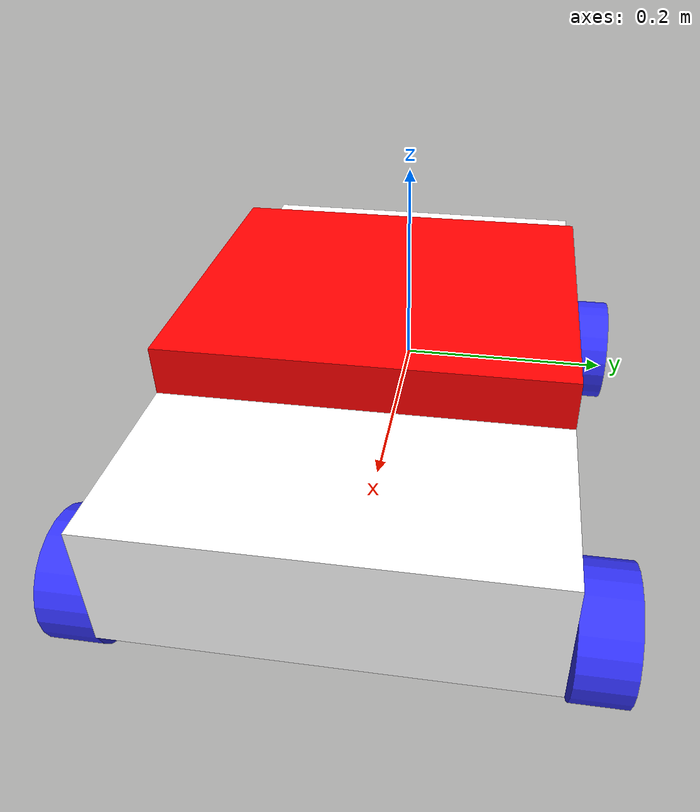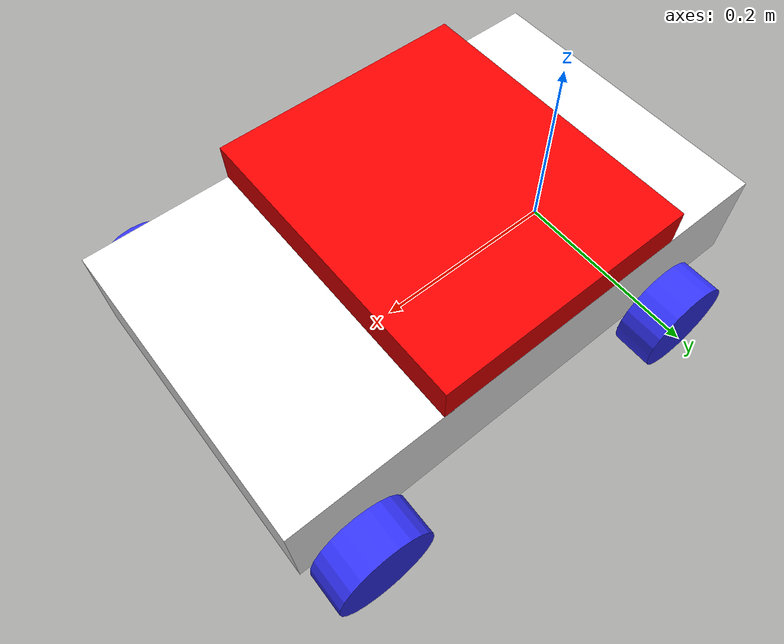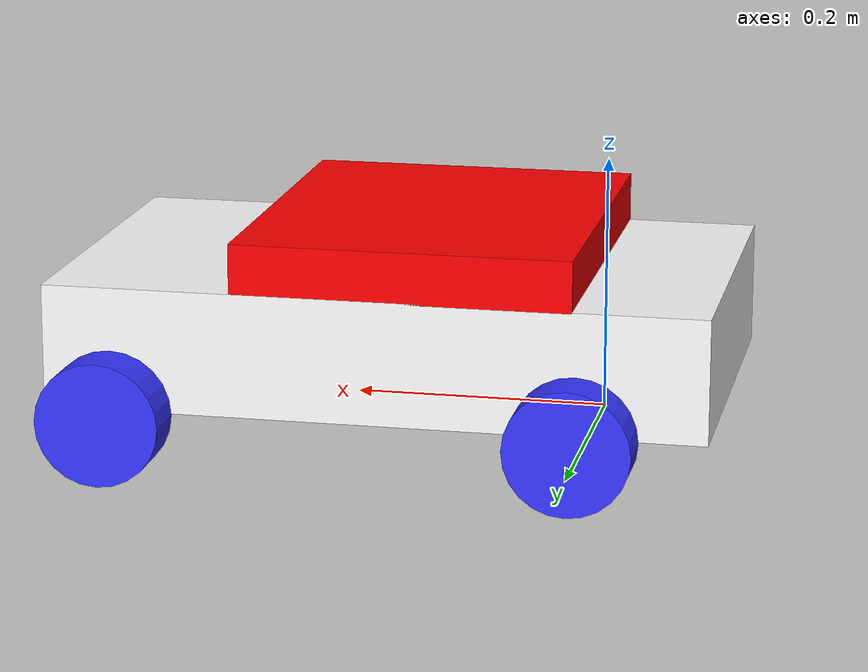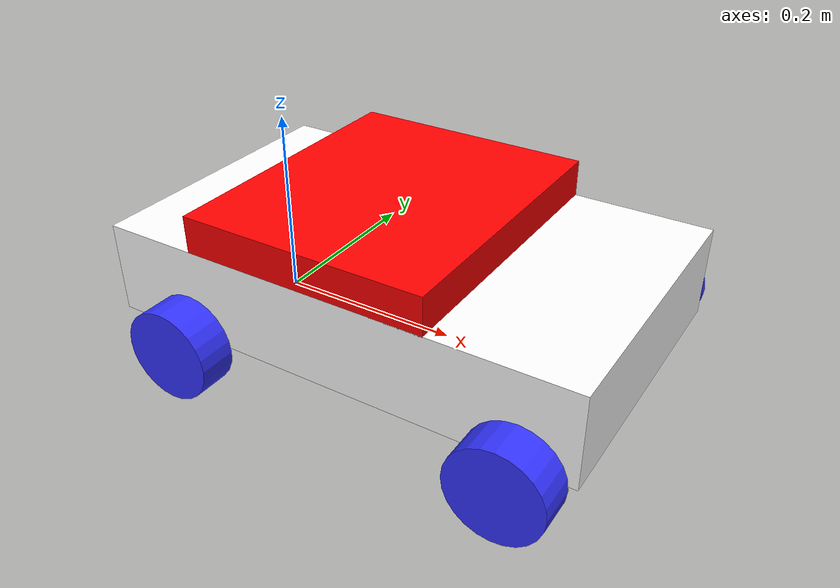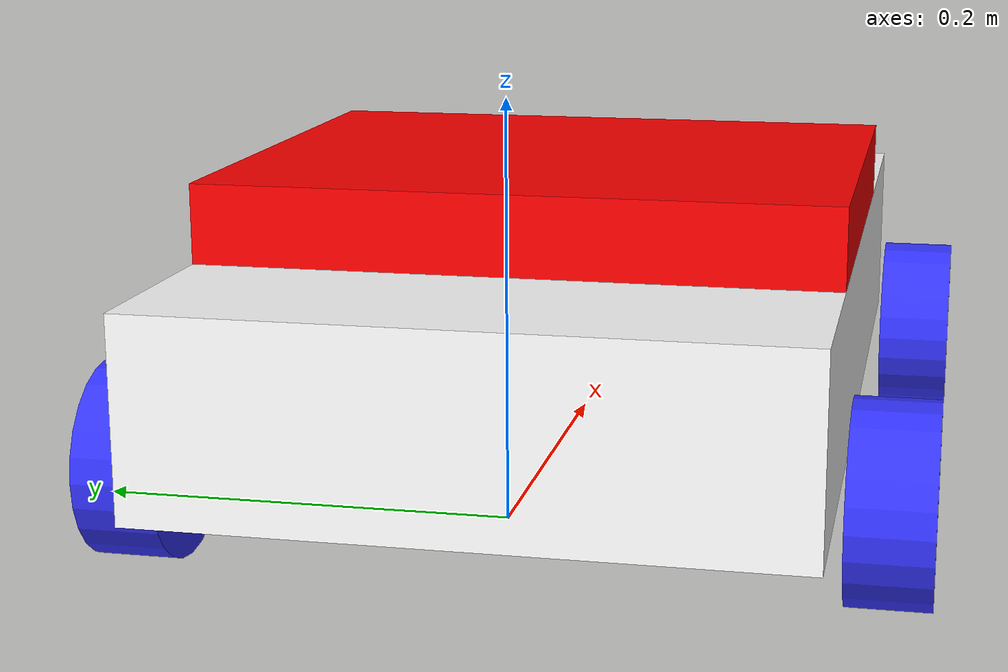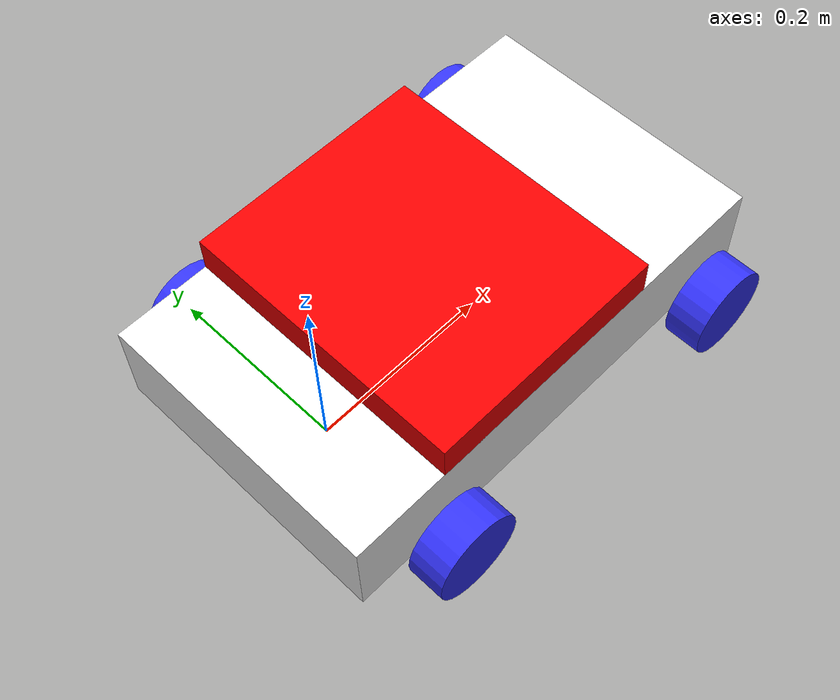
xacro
<?xml version="1.0"?>
<robot xmlns:xacro="http://www.ros.org/wiki/xacro"  name="robot">

<xacro:include filename="robot_core2.xacro" />
</robot>

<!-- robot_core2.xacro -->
<robot xmlns:xacro="http://www.ros.org/wiki/xacro" >

    <material name="white">
        <color rgba="1 1 1 1" />
    </material>

    <material name="orange">
        <color rgba="1 0.3 0.1 1"/>
    </material>

    <material name="blue">
        <color rgba="0.2 0.2 1 1"/>
    </material>

    <material name="black">
        <color rgba="0 0 0 1"/>
    </material>

     <material name="red">
        <color rgba="1 0 0 1"/>
    </material>

    <!-- REAR BASE LINK -->

    <link name="base_link">

    </link>

    <!-- CHASSIS LINK -->

    <joint name="chassis_joint" type="fixed">
        <parent link="base_link"/>
        <child link="chassis"/>
        <origin xyz="-0.1 0 0"/>
    </joint>

    <link name="chassis">
        <visual>
            <origin xyz="0.2575 0 0.0675"/>
            <geometry>
                <box size="0.515 0.31 0.097"/>
            </geometry>
            <material name="white"/>
        </visual>
    </link>

    <!-- UPPER CHASSIS LINK -->

<joint name="upper_chassis_joint" type="fixed">
    <parent link="chassis"/>
    <child link="upper_chassis"/>
    <origin xyz="0.235 0 0.097"/>
</joint>

<link name="upper_chassis">
    <visual>
        <origin xyz="0 0 0.038" rpy="0 0 0"/>
        <geometry>
            <box size="0.263 0.31 0.04"/>
        </geometry>
        <material name="red"/>
    </visual>
</link>

  <!-- Rear LEFT WHEEL -->

<joint name="rear_left_wheel_joint" type="continuous">
    <parent link="base_link"/>
    <child link="rear_left_wheel"/>
    <origin xyz="0 0.18 0.0194" rpy="-${pi/2} 0 0"/>
    <!-- y = b + thickness of wheel/2 + 0.5(mm) -->
    <!-- connected with base link -->
    <axis xyz="0 0 1"/>
</joint>

<link name="rear_left_wheel">
    <visual>
        <geometry>
            <cylinder length="0.04" radius="0.0485" />
        </geometry>
        <material name="blue"/>
    </visual>
</link>

  <!-- Rear RIGHT WHEEL -->

<joint name="rear_right_wheel_joint" type="continuous">
    <parent link="base_link"/>
    <child link="rear_right_wheel"/>
    <origin xyz="0 -0.18 0.0194" rpy="-${pi/2} 0 0"/>
    <!-- y = b + thickness of wheel/2 + 0.5(mm) -->
    <!-- connected with base link -->
    <axis xyz="0 0 -1"/>
</joint>

<link name="rear_right_wheel">
    <visual>
        <geometry>
            <cylinder length="0.04" radius="0.0485" />
        </geometry>
        <material name="blue"/>
    </visual>
</link>

<!-- FRONT -->

<joint name="front_wheel_steer_joint" type="revolute">
    <limit lower="-1" upper="1" effort="1" velocity="5"/>
    <axis xyz="0 0 1"/>
    <parent link="base_link"/>
    <child link="front_wheel_steer"/>
    <origin rpy="0 0 0" xyz="0.360 0 0"/>
  </joint>

<link name="front_wheel_steer">
    <visual>
      <geometry>
        <cylinder length="0.01" radius="0.01"/>
      </geometry>
      <material name="black"/>
    </visual>
  </link>

  <!-- FRONT LEFT WHEEL -->

<joint name="front_left_wheel_joint" type="continuous">
    <parent link="front_wheel_steer"/>
    <child link="front_left_wheel"/>
    <origin xyz="0 0.18 0.0194" rpy="-${pi/2} 0 0"/>
    <!-- y = b + thickness of wheel/2 + 0.5(mm) -->
    <!-- connected with base link -->
    <axis xyz="0 0 1"/>
</joint>

<link name="front_left_wheel">
    <visual>
        <geometry>
            <cylinder length="0.04" radius="0.0485" />
        </geometry>
        <material name="blue"/>
    </visual>
</link>

  <!-- FRONT RIGHT WHEEL -->

<joint name="front_right_wheel_joint" type="continuous">
    <parent link="front_wheel_steer"/>
    <child link="front_right_wheel"/>
    <origin xyz="0 -0.18 0.0194" rpy="-${pi/2} 0 0"/>
    <!-- y = b + thickness of wheel/2 + 0.5(mm) -->
    <!-- connected with base link -->
    <axis xyz="0 0 -1"/>
</joint>

<link name="front_right_wheel">
    <visual>
        <geometry>
            <cylinder length="0.04" radius="0.0485" />
        </geometry>
        <material name="blue"/>
    </visual>
</link>

    </robot>
